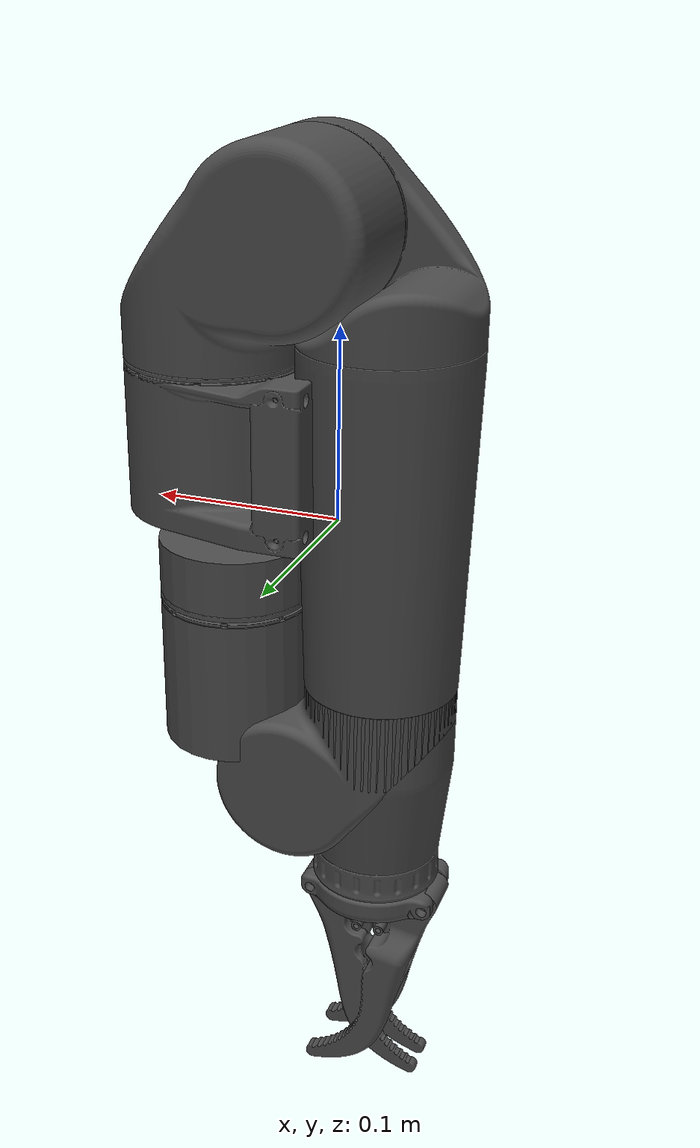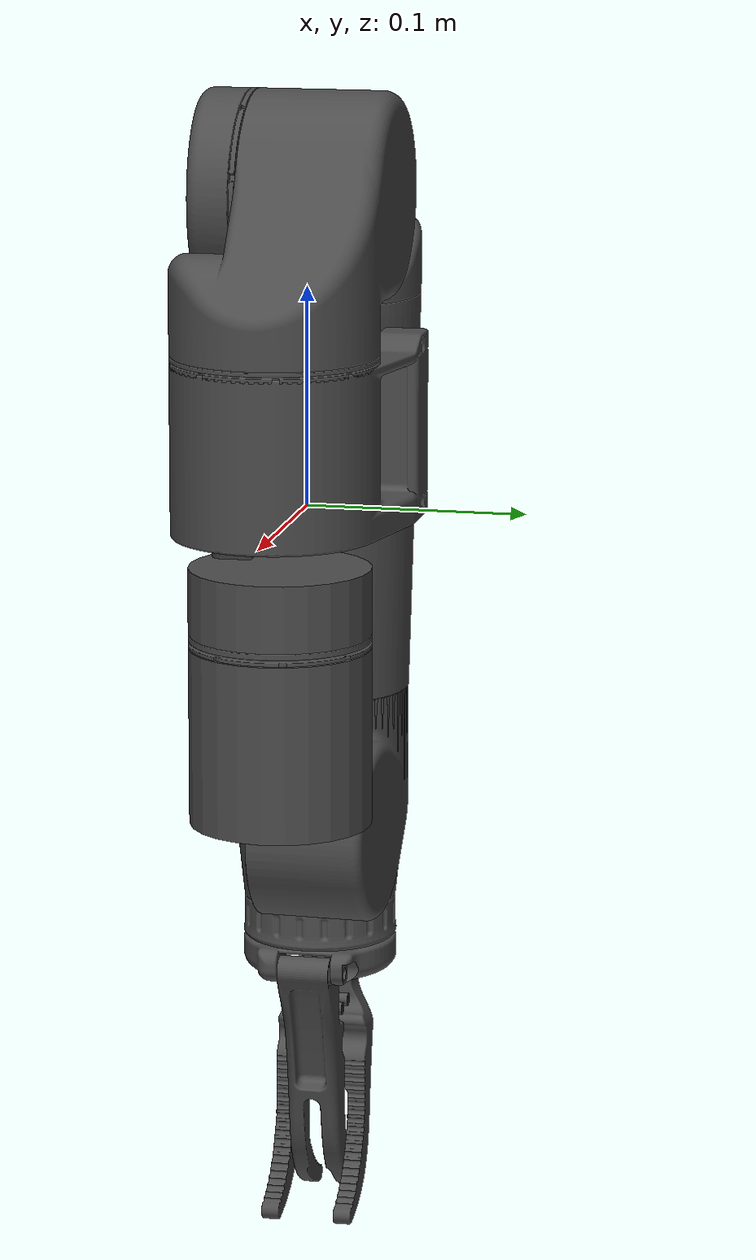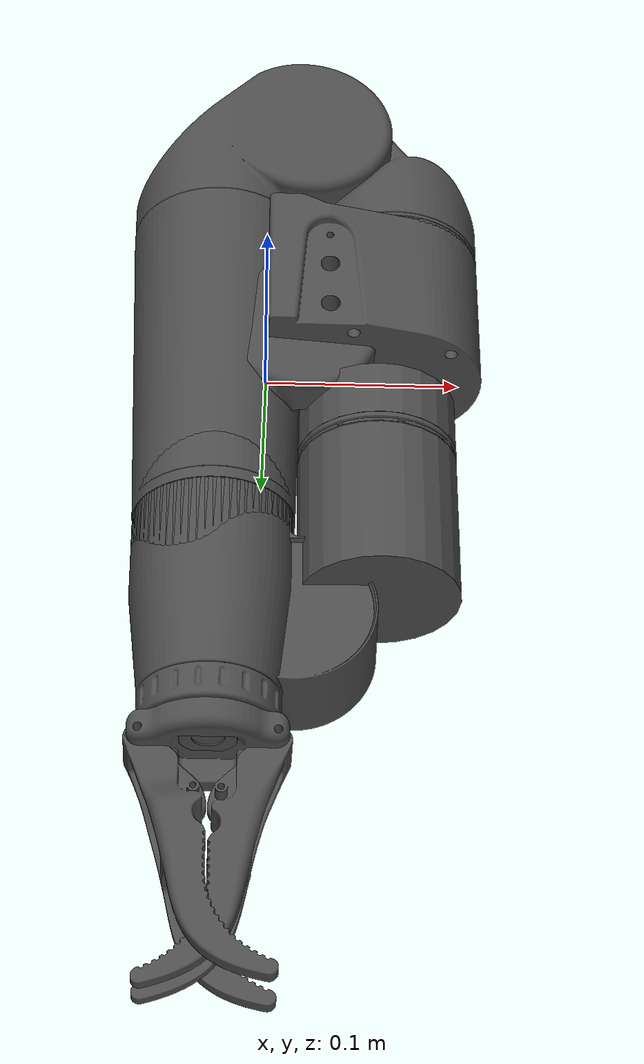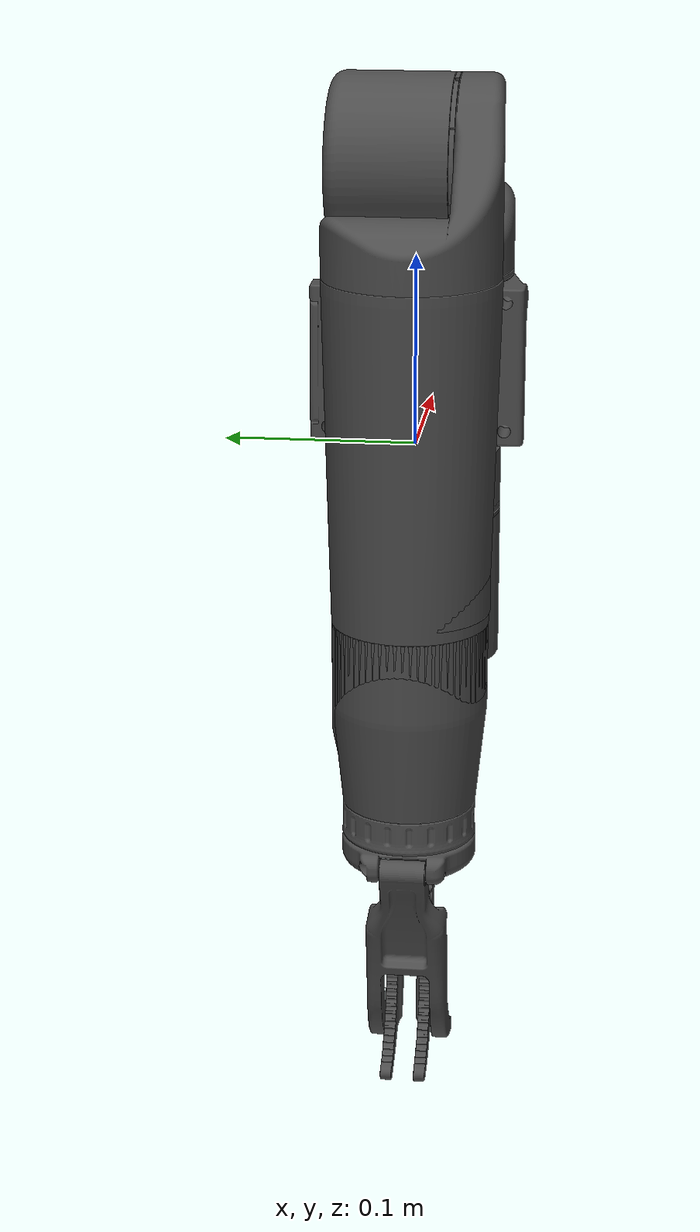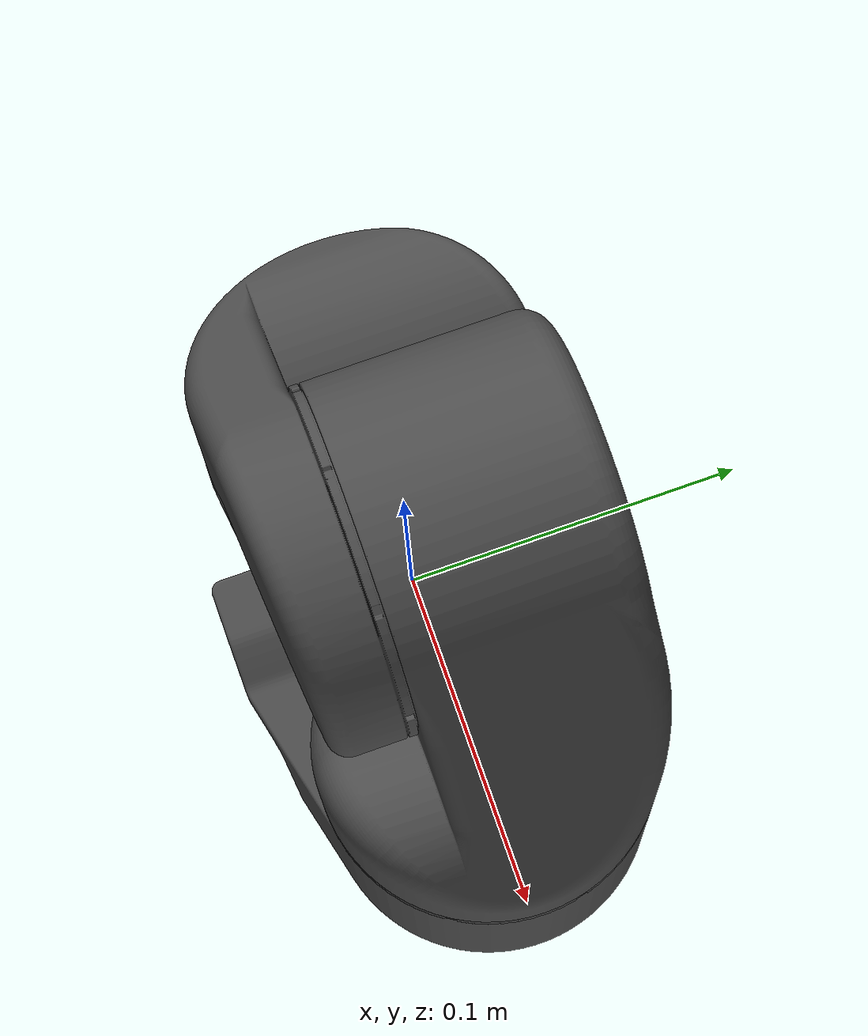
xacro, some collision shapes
<?xml version="1.0" ?>
<robot name="bravo_7_example" xmlns:xacro="http://ros.org/wiki/xacro">
  <xacro:include filename="$(find reach_bravo_description)/urdf/bravo_7.urdf.xacro"/>
    <link name="base_link"/>

    <xacro:bravo_7 parent="base_link" name="bravo">
      <origin xyz="0 0 0" rpy="0 0 0"/>
    </xacro:bravo_7>
</robot>

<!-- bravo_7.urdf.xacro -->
<robot name="bravo_7" xmlns:xacro="http://ros.org/wiki/xacro">

    <xacro:macro name="bravo_7" params="parent *origin  name:=bravo_7">
         <joint name="${name}_joint" type="fixed">
            <xacro:insert_block name="origin" />
            <parent link="${parent}"/>
            <child link="${name}_base_link" />
            <origin xyz="0 0 0" rpy="0 0 0"/>
        </joint>
        <material name="${name}_black">
            <color rgba="0.3 0.3 0.3 1"/>
        </material>
        <link name="${name}_base_link">
            <visual>
                <geometry>
                    <mesh filename="package://reach_bravo_description/meshes/RS2-1019_base.stl"/>
                </geometry>
                <material name="${name}_black"/>
            </visual>
           <collision>
            <geometry>
                <box size="0.0725 0.1112 0.083"/>
            </geometry>
            <origin rpy="0 0 0" xyz="0.03625 00 0.0415"/>
        </collision>

        <collision>
            <geometry>
                <box size="0.050 0.080 0.060"/>
            </geometry>
            <origin rpy="0 0 0" xyz="0.025 -0.04556 0.03"/>
        </collision>

        <collision>
            <geometry>
                <cylinder radius="0.046" length="0.083"/>
            </geometry>
            <origin rpy="0 0 0" xyz="0.0665 0 0.0415"/>
        </collision>

        </link>

        <joint name="${name}_axis_g" type="revolute">
            <parent link="${name}_base_link"/>
            <origin xyz="0.0665 0 0.08" rpy="0 0 3.14159"/>
            <axis xyz="0 0 -1"/>
            <child link="${name}_1019_end_link"/>
            <limit effort="0" velocity="0" lower="0.0" upper="6.3" />
        </joint>

        <link name="${name}_1019_end_link">
            <visual>
                <geometry>
                    <mesh filename="package://reach_bravo_description/meshes/RS2-1019_end.stl"/>
                </geometry>
                <material name="${name}_black"/>
            </visual>
        </link>

        <joint name="${name}_f_base_joint" type="fixed">
            <parent link="${name}_1019_end_link"/>
            <origin xyz="0 0 0" rpy="0 0 0"/>
            <child link="${name}_1013_base_link"/>
        </joint>

        <link name="${name}_1013_base_link">
            <visual>
                <geometry>
                    <mesh filename="package://reach_bravo_description/meshes/RS2-1013_base.stl"/>
                </geometry>
                <material name="${name}_black"/>
            </visual>
            <collision>
                <geometry>
                    <cylinder radius="0.046" length="0.030"/>
                </geometry>
                <origin rpy="0 0 0" xyz="0.0 00 0.015"/>
            </collision>

            <collision>
                <geometry>
                    <cylinder radius="0.046" length="0.1"/>
                </geometry>
                <origin rpy="1.5707 0 0 " xyz="0.048 00 0.0642"/>
            </collision>
        </link>

        <joint name="${name}_axis_f" type="revolute">
            <parent link="${name}_1013_base_link"/>
            <origin xyz="0.046 0 0.0642" rpy="0 0 0"/>
            <axis xyz="0 -1 0"/>
            <child link="${name}_1013_joint_link"/>
            <limit effort="0" velocity="0" lower="0.0" upper="3.2" />
        </joint>

        <link name="${name}_1013_joint_link">
            <visual>
                <geometry>
                    <mesh filename="package://reach_bravo_description/meshes/RS2-1013_end.stl"/>
                </geometry>
                <material name="${name}_black"/>
            </visual>

            <collision>

                <geometry>
                    <cylinder radius="0.046" length="0.03"/>
                </geometry>
                <origin rpy="0 0 0" xyz="0.046 0 -0.03555"/>
            </collision>
        </link>

        <joint name="${name}_1013_end_joint" type="fixed">
            <parent link="${name}_1013_joint_link"/>
            <origin xyz="0.046 0 -0.05055" rpy="3.14159 0 3.14159"/>
            <child link="${name}_1013_end_link"/>
        </joint>

        <link name="${name}_1013_end_link"/>

        <joint name="${name}_e_base_joint" type="fixed">
            <parent link="${name}_1013_end_link"/>
            <origin xyz="0 0 0.182" rpy="0 0 0"/>
            <child link="${name}_1026_0_base_link"/>
        </joint>

        <link name="${name}_1026_0_base_link">
            <visual>
                <geometry>
                    <mesh filename="package://reach_bravo_description/meshes/RS2-1026_0_base.stl"/>
                </geometry>
                <material name="${name}_black"/>
            </visual>
            <collision>
                <geometry>
                    <cylinder radius="0.0408" length="0.03" />
                </geometry>
                <origin rpy="0 0 0" xyz="0 00 0.015"/>
            </collision>

            <collision>
                <geometry>
                    <cylinder radius="0.0408" length="0.0816" />
                </geometry>
                <origin rpy="1.5707 0 0" xyz="0.0408 00 0.0578"/>
            </collision>

        </link>

        <joint name="${name}_axis_e" type="revolute">
            <parent link="${name}_1026_0_base_link"/>
            <origin xyz="0.042 0 0.0578" rpy="0 0 0"/>
            <axis xyz="0 -1 0"/>
            <child link="${name}_1026_0_joint_link"/>
            <limit effort="0" velocity="0" lower="0.0" upper="3.2" />
        </joint>

        <link name="${name}_1026_0_joint_link">
            <visual>
                <geometry>
                    <mesh filename="package://reach_bravo_description/meshes/RS2-1026_0_end.stl"/>
                </geometry>
                <material name="${name}_black"/>
            </visual>
            <collision>
                <geometry>
                    <cylinder radius="0.0408" length="0.080"/>
                </geometry>
                <origin rpy="0 0 0" xyz="0.0408 0 -0.05385"/>
            </collision>
        </link>

        <joint name="${name}_1026_0_end_joint" type="fixed">
            <parent link="${name}_1026_0_joint_link"/>
            <origin xyz="0.0408 0 -0.09385" rpy="3.14159 0 0"/>
            <child link="${name}_1026_0_end_link"/>
        </joint>

        <link name="${name}_1026_0_end_link"/>

        <joint name="${name}_d_base_joint" type="fixed">
            <parent link="${name}_1026_0_end_link"/>
            <origin xyz="0 0 0" rpy="0 0 0"/>
            <child link="${name}_1026_1_base_link"/>
        </joint>

        <link name="${name}_1026_1_base_link">
        </link>

        <joint name="${name}_axis_d" type="revolute">
            <parent link="${name}_1026_1_base_link"/>
            <origin xyz="0 0 0.0005" rpy="0 0 0"/>
            <axis xyz="0 0 -1"/>
            <child link="${name}_1026_1_joint_link"/>
            <limit effort="0" velocity="0" lower="0" upper="6.2" />
        </joint>

        <link name="${name}_1026_1_joint_link">
            <visual>
                <geometry>
                    <mesh filename="package://reach_bravo_description/meshes/RS2-1026_1_end.stl"/>
                </geometry>
                <material name="${name}_black"/>
                <origin xyz="0 0 0 " rpy="0 0 3.14159"/>
            </visual>
            <collision>
                <geometry>
                    <cylinder radius="0.0408" length="0.0056"/>
                </geometry>
                <origin rpy="0 0 3.14159" xyz="0 0 0.0028"/>
            </collision>
        </link>

        <joint name="${name}_1026_1_end_joint" type="fixed">
            <parent link="${name}_1026_1_joint_link"/>
            <origin xyz="0 0 0.0056" rpy="0 0 3.14159"/>
            <child link="${name}_1026_1_end_link"/>
        </joint>

        <link name="${name}_1026_1_end_link"/>

        <joint name="${name}_c_base_joint" type="fixed">
            <parent link="${name}_1026_1_end_link"/>
            <origin xyz="0 0 0.0" rpy="0 0 0"/>
            <child link="${name}_1023_0_base_link"/>
        </joint>

        <link name="${name}_1023_0_base_link">
            <visual>
                <geometry>
                    <mesh filename="package://reach_bravo_description/meshes/RS2-1023_0_base.stl"/>
                </geometry>
                <material name="${name}_black"/>
            </visual>
            <collision>
                <geometry>
                    <cylinder radius="0.0408" length="0.03" />
                </geometry>
                <origin rpy="0 0 0" xyz="0 00 0.015"/>
            </collision>

            <collision>
                <geometry>
                    <cylinder radius="0.0408" length="0.0816" />
                </geometry>
                <origin rpy="1.5707 0 0" xyz="0.0408 00 0.0578"/>
            </collision>

        </link>

        <joint name="${name}_axis_c" type="revolute">
            <parent link="${name}_1023_0_base_link"/>
            <origin xyz="0.042 0 0.0578" rpy="0 0 0"/>
            <axis xyz="0 -1 0"/>
            <child link="${name}_1023_0_joint_link"/>
            <limit effort="0" velocity="0" lower="0.0" upper="3.2" />
        </joint>

        <link name="${name}_1023_0_joint_link">
            <visual>
                <geometry>
                    <mesh filename="package://reach_bravo_description/meshes/RS2-1023_0_end.stl"/>
                </geometry>
                <material name="${name}_black"/>
            </visual>
            <collision>
                <geometry>
                    <cylinder radius="0.0408" length="0.080"/>
                </geometry>
                <origin rpy="0 0 0" xyz="0.0408 0 -0.05385"/>
            </collision>
        </link>

        <joint name="${name}_1023_0_end_joint" type="fixed">
            <parent link="${name}_1023_0_joint_link"/>
            <origin xyz="0.0408 0 -0.09385" rpy="3.14159 0 0"/>
            <child link="${name}_1023_0_end_link"/>
        </joint>

        <link name="${name}_1023_0_end_link"/>

        <joint name="${name}_b_base_joint" type="fixed">
            <parent link="${name}_1023_0_end_link"/>
            <origin xyz="0 0 0" rpy="0 0 0"/>
            <child link="${name}_1023_1_base_link"/>
        </joint>

        <link name="${name}_1023_1_base_link">
        </link>

        <joint name="${name}_axis_b" type="continuous">
            <parent link="${name}_1023_1_base_link"/>
            <origin xyz="0 0 0.0005" rpy="0 0 0"/>
            <axis xyz="0 0 -1"/>
            <child link="${name}_1023_1_joint_link"/>
        </joint>

        <link name="${name}_1023_1_joint_link">
            <visual>
                <geometry>
                    <mesh filename="package://reach_bravo_description/meshes/RS2-1023_1_end.stl"/>
                </geometry>
                <material name="${name}_black"/>
            </visual>
            <collision>
                <geometry>
                    <cylinder radius="0.0408" length="0.0056"/>
                </geometry>
                <origin rpy="0 0 0" xyz="0 0 0.0028"/>
            </collision>
        </link>

        <joint name="${name}_1023_1_end_joint" type="fixed">
            <parent link="${name}_1023_1_joint_link"/>
            <origin xyz="0 0 0.0056" rpy="0 0 0"/>
            <child link="${name}_1023_1_end_link"/>
        </joint>

        <link name="${name}_1023_1_end_link"/>

        <joint name="${name}_a_base_joint" type="fixed">
            <parent link="${name}_1023_1_end_link"/>
            <origin xyz="0 0 0" rpy="0 0 0"/>
            <child link="${name}_1028_base_link"/>
        </joint>

        <link name="${name}_1028_base_link">
            <visual>
                <geometry>
                    <mesh filename="package://reach_bravo_description/meshes/RS2-1028.stl"/>
                </geometry>
                <material name="${name}_black"/>
            </visual>
            <collision>
                <geometry>
                    <cylinder radius="0.0408" length="0.120"/>
                </geometry>
                <origin xyz="0 0 0.06" rpy="0 0 0"/>
            </collision>

        </link>

        <joint name="${name}_1028_end_joint" type="fixed">
            <parent link="${name}_1028_base_link"/>
            <origin xyz="0 0 0.120" rpy="-1.5707 -1.5707 0"/>
            <child link="${name}_1028_end_link"/>
        </joint>

        <link name="${name}_1028_end_link"/>

        <joint name="${name}_jaws_joint" type="fixed">
            <origin rpy="0 0 0" xyz=" 0 0 0.0"/>
            <parent link="${name}_1028_end_link"/>
            <child link="${name}_jaws_base_link"/>
        </joint>

        <link name="${name}_jaws_base_link">
        </link>
        <link name="${name}_push_rod"/>
        <joint name="${name}_axis_a" type="prismatic">
            <origin rpy="0 0 0" xyz="0 0 0.009"/>
            <parent link="${name}_jaws_base_link"/>
            <child link="${name}_push_rod"/>
            <axis xyz="0 0 1"/>
            <limit effort="10" lower="0" upper="0.035" velocity="10"/>
        </joint>

        <link name="${name}_1030_base_link">
            <visual>
                <geometry>
                    <mesh filename="package://reach_bravo_description/meshes/RS2-1030.stl"/>
                </geometry>
                <material name="${name}_black"/>
            </visual>
            <collision>
                <geometry>
                    <cylinder radius="0.046" length="0.03033333"/>
                </geometry>
                <origin xyz="0 0 0.01516666" rpy="0 0 0"/>
            </collision>

            <collision>
                <geometry>
                    <cylinder radius="0.045" length="0.03033333"/>
                </geometry>
                <origin xyz="0 0 0.0455" rpy="0 0 0"/>
            </collision>

            <collision>
                <geometry>
                    <cylinder radius="0.044" length="0.03033333"/>
                </geometry>
                <origin xyz="0 0 0.075833333" rpy="0 0 0"/>
            </collision>

            <collision>
                <geometry>
                    <cylinder radius="0.043" length="0.03033333"/>
                </geometry>
                <origin xyz="0 0 0.1061666666" rpy="0 0 0"/>
            </collision>

            <collision>
                <geometry>
                    <cylinder radius="0.042" length="0.03033333"/>
                </geometry>
                <origin xyz="0 0 0.1365" rpy="0 0 0"/>
            </collision>
            <collision>
                <geometry>
                    <cylinder radius="0.041" length="0.03033333"/>
                </geometry>
                <origin xyz="0 0 0.1668333" rpy="0 0 0"/>
            </collision>
        </link>

        <joint name="${name}_1030_base_joint" type="fixed">
            <parent link="${name}_1013_end_link"/>
            <child link="${name}_1030_base_link"/>
            <origin xyz="0 0 0" rpy="0 0 0"/>
        </joint>

        <xacro:include filename="$(find reach_bravo_description)/urdf/end_effectors/finger_jaws.urdf.xacro"/>
        <xacro:bravo_finger_jaws parent="${name}_jaws_base_link" name="${name}_finger_jaws" axis_a="${name}_axis_a">
            <origin xyz="0 0 0" rpy="0 0 0"/>
        </xacro:bravo_finger_jaws>
    </xacro:macro>
</robot>

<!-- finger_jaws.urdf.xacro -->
<robot name="bravo_finger_jaws" xmlns:xacro="http://ros.org/wiki/xacro">
    <xacro:macro name="bravo_finger_jaws" params="parent *origin name:=bravo_finger_jaws axis_a">
        <material name="${name}_black">
            <color rgba="0.3 0.3 0.3 1" />
        </material>
        <joint name="${name}_joint" type="fixed">
            <xacro:insert_block name="origin" />
            <parent link="${parent}"/>
            <child link="${name}_base_link" />
            <origin xyz="0 0 0" rpy="0 0 0"/>
        </joint>

        <link name="${name}_base_link">
            <visual>
                <geometry>
                    <mesh filename="package://reach_bravo_description/meshes/end_effectors/RS2-257.stl"/>
                </geometry>
                <material name="${name}_black"/>
            </visual>
            <collision>
                <geometry>
                    <cylinder length="0.02" radius="0.05"/>
                </geometry>
                <origin xyz="0.01 0 0.00" rpy="0 1.5707 0"/>
            </collision>
        </link>

        <link name="${name}_rs2_300_link">
            <visual>
                <geometry>
                    <mesh filename="package://reach_bravo_description/meshes/end_effectors/RS2-300.stl"/>
                </geometry>
                <material name="${name}_black"/>

            </visual>
            <collision>
                <geometry>
                    <box size="0.14 0.04 0.045"/>
                </geometry>
                <origin xyz="0.07 0.025 0.00" rpy="0 0 0.35"/>
            </collision>
        </link>

        <joint name="${name}_rs2_300_joint" type="revolute">
            <origin xyz="0.0097 -0.033 0" rpy="0 0 0"/>
            <parent link="${name}_base_link"/>
            <child link="${name}_rs2_300_link"/>
            <axis xyz="0 0 -1"/>
            <limit lower="0" upper="1.0" effort="10" velocity="10"/>
            <mimic joint="${axis_a}" multiplier="18" offset="0"/>
        </joint>

        <link name="${name}_rs2_301_link">
            <visual>
                <geometry>
                    <mesh filename="package://reach_bravo_description/meshes/end_effectors/RS2-301.stl"/>
                </geometry>
                <material name="${name}_black"/>
            </visual>
            <collision>
                <geometry>
                    <box size="0.14 0.04 0.045"/>
                </geometry>
                <origin xyz="0.07 -0.025 0.00" rpy="0 0 -0.35"/>
            </collision>
        </link>

        <joint name="${name}_rs2_301_joint" type="revolute">
            <origin xyz="0.0097 0.033 0" rpy="0 0 0"/>
            <parent link="${name}_base_link"/>
            <child link="${name}_rs2_301_link"/>
            <axis xyz="0 0 1"/>
            <limit lower="0" upper="1.0" effort="10" velocity="10"/>
            <mimic joint="${name}_rs2_300_joint" multiplier="1" offset="0"/>
        </joint>
    </xacro:macro>
</robot>
